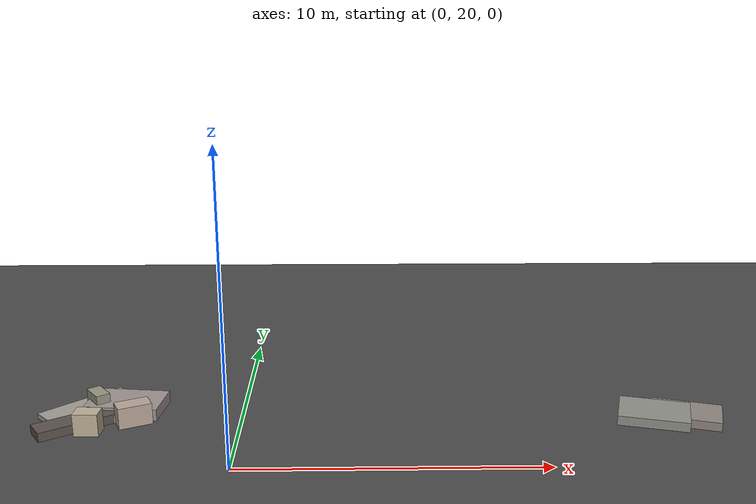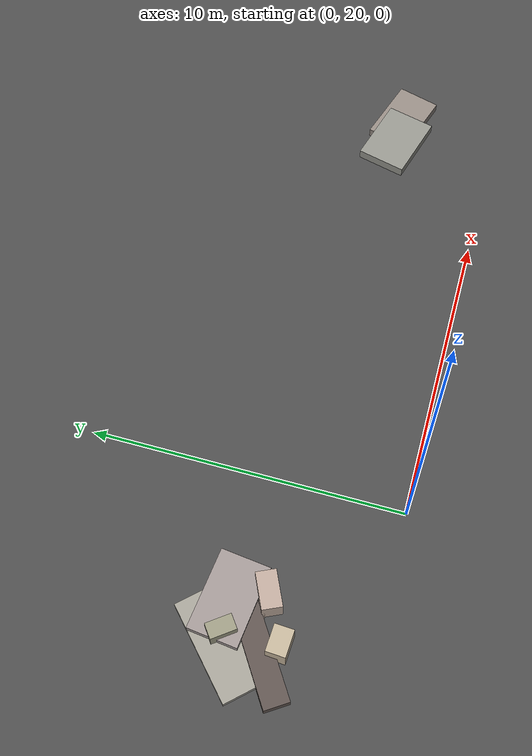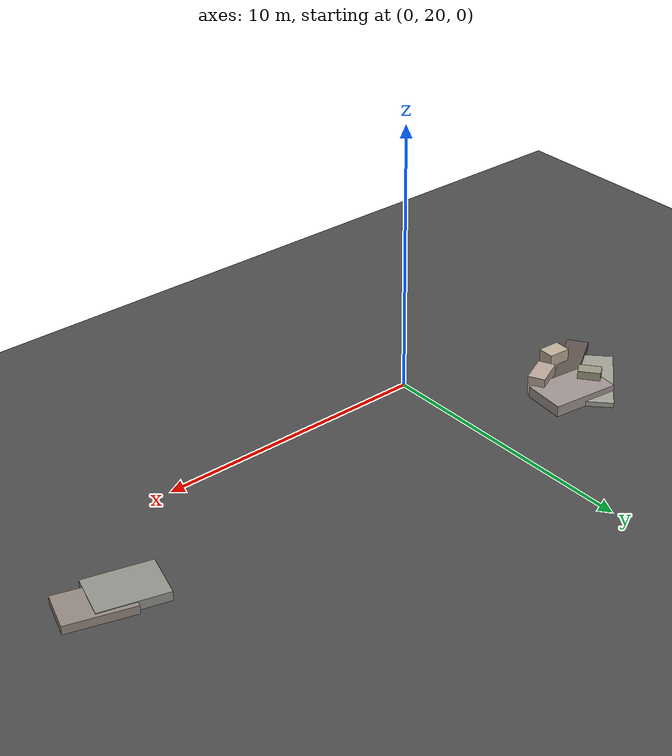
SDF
<sdf version="1.6">
 <world name="navitas_arena">
  <model name="ground_plane">
   <static>true</static>
   <link name="link">
    <collision name="collision">
     <geometry><plane><normal>0 0 1</normal><size>400 400</size></plane></geometry>
     <surface><friction><ode><mu>0.800</mu><mu2>0.800</mu2></ode></friction></surface>
    </collision>
    <visual name="visual">
     <cast_shadows>false</cast_shadows>
     <geometry><plane><normal>0 0 1</normal><size>400 400</size></plane></geometry>
     <material>
      <specular>0.04 0.04 0.04 1</specular>
      <script>
       <uri>file://media/materials/scripts/navitas_asphalt.material</uri>
       <name>Navitas/RealArenaAsphalt</name>
      </script>
     </material>
    </visual>
   </link>
  </model>
  <model name="deb_orta_176">
   <static>true</static>
   <pose>14.633 23.674 0.000 0 0 0</pose>
   <link name="link">
    <collision name="col_0">
     <pose>0.359 -0.274 0.154 0.000 0.000 2.844</pose>
     <geometry><box><size>2.340 1.479 0.307</size></box></geometry>
    </collision>
    <visual name="vis_0">
     <pose>0.359 -0.274 0.154 0.000 0.000 2.844</pose>
     <geometry><box><size>2.340 1.479 0.307</size></box></geometry>
     <material>
      <ambient>0.54 0.50 0.48 1</ambient>
      <diffuse>0.58 0.54 0.51 1</diffuse>
      <specular>0.05 0.05 0.045 1</specular>
     </material>
    </visual>
    <collision name="col_1">
     <pose>-0.710 -0.237 0.165 0.000 0.000 2.876</pose>
     <geometry><box><size>2.354 1.686 0.330</size></box></geometry>
    </collision>
    <visual name="vis_1">
     <pose>-0.710 -0.237 0.165 0.000 0.000 2.876</pose>
     <geometry><box><size>2.354 1.686 0.330</size></box></geometry>
     <material>
      <ambient>0.54 0.54 0.50 1</ambient>
      <diffuse>0.58 0.58 0.55 1</diffuse>
      <specular>0.05 0.05 0.045 1</specular>
     </material>
    </visual>
    <collision name="col_2">
     <pose>0.313 0.238 0.088 0.000 0.000 2.337</pose>
     <geometry><box><size>0.243 0.380 0.175</size></box></geometry>
    </collision>
    <visual name="vis_2">
     <pose>0.313 0.238 0.088 0.000 0.000 2.337</pose>
     <geometry><box><size>0.243 0.380 0.175</size></box></geometry>
     <material>
      <ambient>0.51 0.34 0.29 1</ambient>
      <diffuse>0.55 0.37 0.31 1</diffuse>
      <specular>0.05 0.05 0.045 1</specular>
     </material>
    </visual>
    <collision name="col_3">
     <pose>-0.196 -0.408 0.113 0.000 0.000 3.021</pose>
     <geometry><box><size>2.108 0.819 0.226</size></box></geometry>
    </collision>
    <visual name="vis_3">
     <pose>-0.196 -0.408 0.113 0.000 0.000 3.021</pose>
     <geometry><box><size>2.108 0.819 0.226</size></box></geometry>
     <material>
      <ambient>0.38 0.38 0.35 1</ambient>
      <diffuse>0.42 0.41 0.38 1</diffuse>
      <specular>0.05 0.05 0.045 1</specular>
     </material>
    </visual>
   </link>
  </model>
  <model name="deb_orta_241">
   <static>true</static>
   <pose>-4.453 23.445 0.000 0 0 0</pose>
   <link name="link">
    <collision name="col_0">
     <pose>-0.464 -0.846 0.386 0.000 0.000 -0.056</pose>
     <geometry><box><size>0.831 0.606 0.772</size></box></geometry>
    </collision>
    <visual name="vis_0">
     <pose>-0.464 -0.846 0.386 0.000 0.000 -0.056</pose>
     <geometry><box><size>0.831 0.606 0.772</size></box></geometry>
     <material>
      <ambient>0.70 0.65 0.55 1</ambient>
      <diffuse>0.76 0.70 0.60 1</diffuse>
      <specular>0.05 0.05 0.045 1</specular>
     </material>
    </visual>
    <collision name="col_1">
     <pose>-0.513 0.864 0.358 0.000 0.000 0.644</pose>
     <geometry><box><size>0.487 0.816 0.716</size></box></geometry>
    </collision>
    <visual name="vis_1">
     <pose>-0.513 0.864 0.358 0.000 0.000 0.644</pose>
     <geometry><box><size>0.487 0.816 0.716</size></box></geometry>
     <material>
      <ambient>0.57 0.56 0.47 1</ambient>
      <diffuse>0.61 0.60 0.51 1</diffuse>
      <specular>0.05 0.05 0.045 1</specular>
     </material>
    </visual>
    <collision name="col_2">
     <pose>0.803 -0.022 0.150 0.000 0.000 0.150</pose>
     <geometry><box><size>1.204 0.180 0.300</size></box></geometry>
    </collision>
    <visual name="vis_2">
     <pose>0.803 -0.022 0.150 0.000 0.000 0.150</pose>
     <geometry><box><size>1.204 0.180 0.300</size></box></geometry>
     <material>
      <ambient>0.69 0.62 0.58 1</ambient>
      <diffuse>0.74 0.67 0.62 1</diffuse>
      <specular>0.05 0.05 0.045 1</specular>
     </material>
    </visual>
    <collision name="col_3">
     <pose>-0.709 0.695 0.092 0.000 0.000 0.751</pose>
     <geometry><box><size>3.182 1.707 0.185</size></box></geometry>
    </collision>
    <visual name="vis_3">
     <pose>-0.709 0.695 0.092 0.000 0.000 0.751</pose>
     <geometry><box><size>3.182 1.707 0.185</size></box></geometry>
     <material>
      <ambient>0.59 0.58 0.54 1</ambient>
      <diffuse>0.64 0.63 0.59 1</diffuse>
      <specular>0.05 0.05 0.045 1</specular>
     </material>
    </visual>
    <collision name="col_4">
     <pose>-0.790 -0.343 0.159 0.000 0.000 0.584</pose>
     <geometry><box><size>3.196 0.793 0.318</size></box></geometry>
    </collision>
    <visual name="vis_4">
     <pose>-0.790 -0.343 0.159 0.000 0.000 0.584</pose>
     <geometry><box><size>3.196 0.793 0.318</size></box></geometry>
     <material>
      <ambient>0.34 0.30 0.29 1</ambient>
      <diffuse>0.37 0.33 0.31 1</diffuse>
      <specular>0.05 0.05 0.045 1</specular>
     </material>
    </visual>
    <collision name="col_5">
     <pose>0.431 0.911 0.204 0.000 0.000 -0.114</pose>
     <geometry><box><size>2.536 1.572 0.408</size></box></geometry>
    </collision>
    <visual name="vis_5">
     <pose>0.431 0.911 0.204 0.000 0.000 -0.114</pose>
     <geometry><box><size>2.536 1.572 0.408</size></box></geometry>
     <material>
      <ambient>0.58 0.55 0.54 1</ambient>
      <diffuse>0.63 0.59 0.58 1</diffuse>
      <specular>0.05 0.05 0.045 1</specular>
     </material>
    </visual>
    <collision name="col_6">
     <pose>0.873 -0.152 0.367 0.000 0.000 0.438</pose>
     <geometry><box><size>1.136 0.625 0.734</size></box></geometry>
    </collision>
    <visual name="vis_6">
     <pose>0.873 -0.152 0.367 0.000 0.000 0.438</pose>
     <geometry><box><size>1.136 0.625 0.734</size></box></geometry>
     <material>
      <ambient>0.68 0.61 0.56 1</ambient>
      <diffuse>0.74 0.66 0.61 1</diffuse>
      <specular>0.05 0.05 0.045 1</specular>
     </material>
    </visual>
   </link>
  </model>
 </world>
</sdf>
